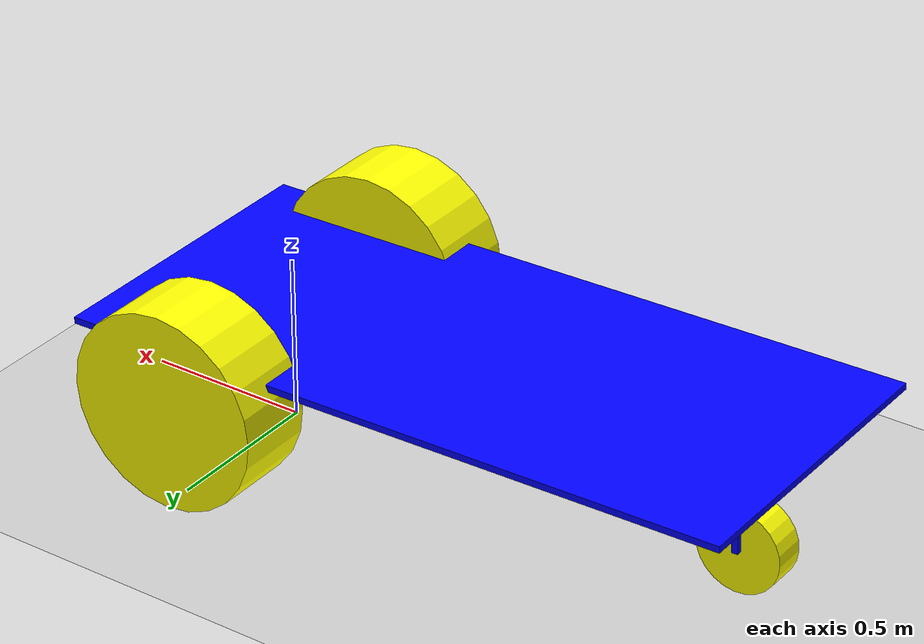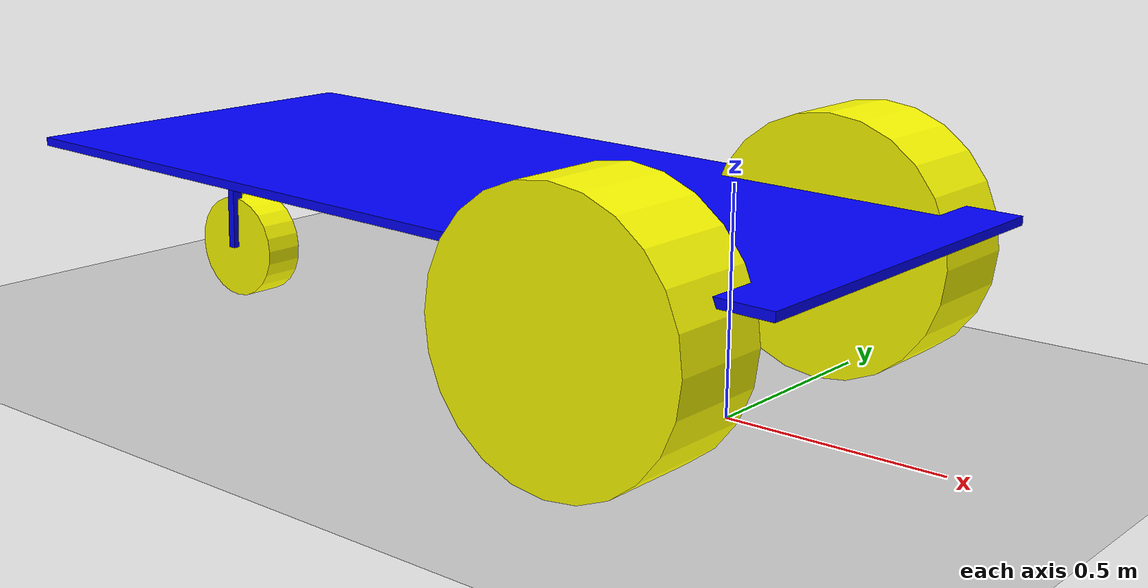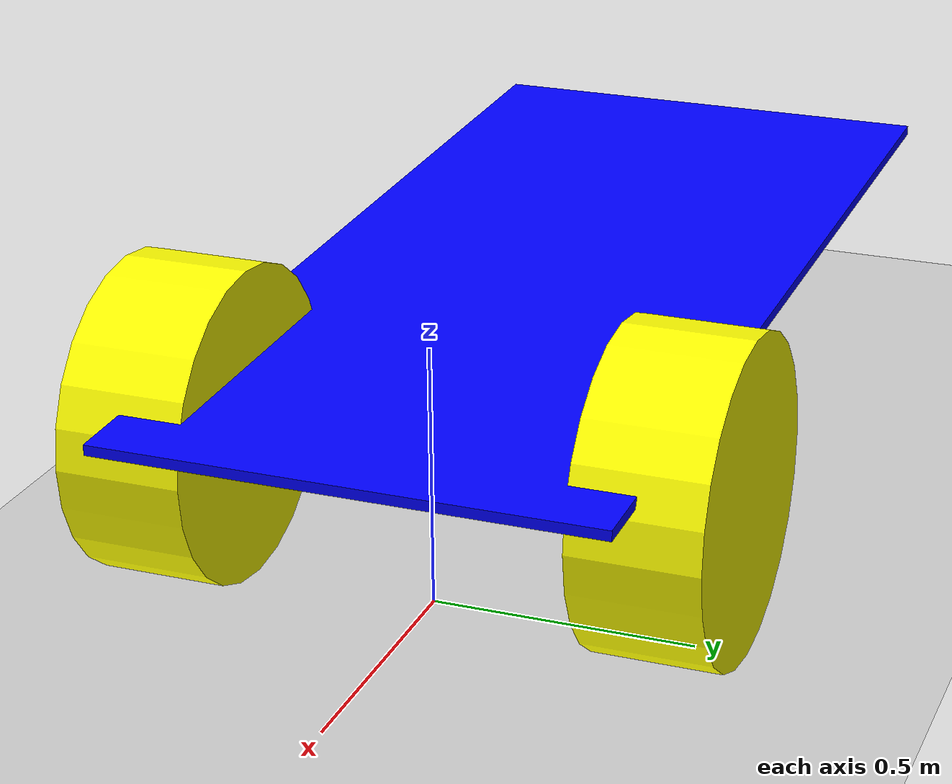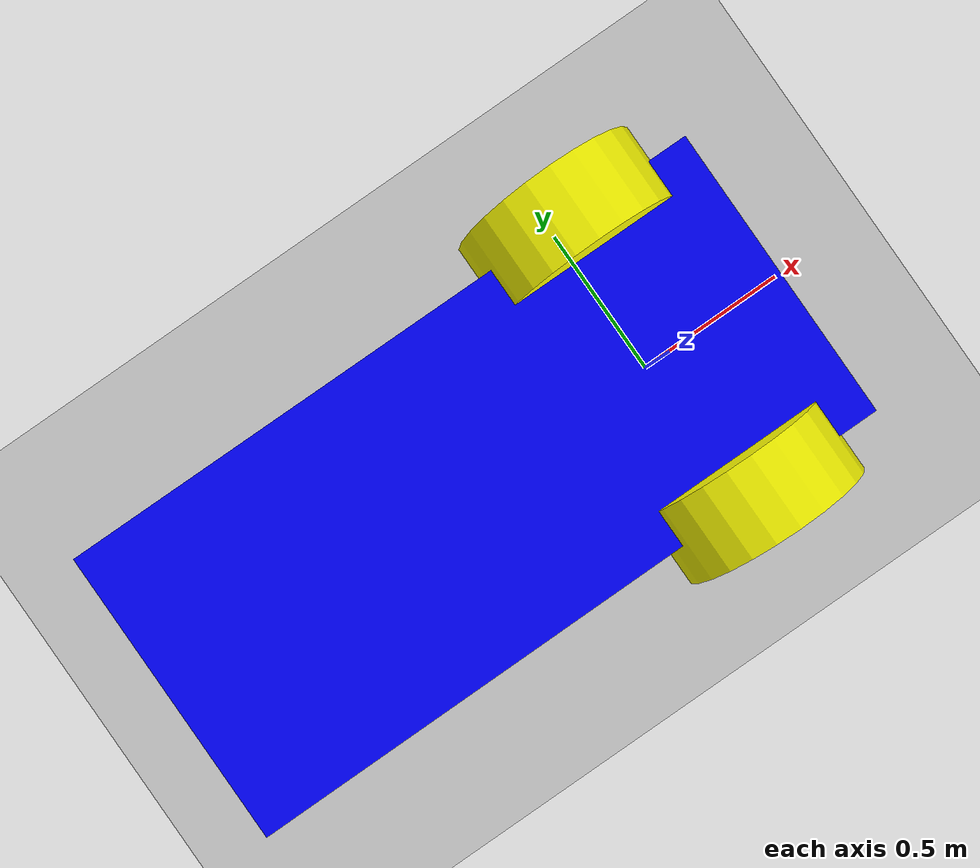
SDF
<sdf version='1.10'>
  <world name='empty'>
    <physics name='1ms' type='ignored'>
      <max_step_size>0.001</max_step_size>
      <real_time_factor>1</real_time_factor>
      <real_time_update_rate>1000</real_time_update_rate>
    </physics>

    <plugin name='gz::sim::systems::Physics' filename='gz-sim-physics-system'/>
    <plugin name='gz::sim::systems::UserCommands' filename='gz-sim-user-commands-system'/>
    <plugin name='gz::sim::systems::SceneBroadcaster' filename='gz-sim-scene-broadcaster-system'/>
    <plugin name='gz::sim::systems::Contact' filename='gz-sim-contact-system'/>

    <gravity>0 0 -9.8000000000000007</gravity>
    <magnetic_field>5.5644999999999998e-06 2.2875799999999999e-05 -4.2388400000000002e-05</magnetic_field>
    <atmosphere type='adiabatic'/>
    <scene>
      <ambient>0.400000006 0.400000006 0.400000006 1</ambient>
      <background>0.699999988 0.699999988 0.699999988 1</background>
      <shadows>true</shadows>
    </scene>

    <model name='ground_plane'>
      <static>true</static>
      <link name='link'>
        <collision name='collision'>
          <geometry>
            <plane>
              <normal>0 0 1</normal>
              <size>100 100</size>
            </plane>
          </geometry>
          <surface>
            <friction>
              <ode/>
            </friction>
            <bounce/>
            <contact/>
          </surface>
        </collision>
        <visual name='visual'>
          <geometry>
            <plane>
              <normal>0 0 1</normal>
              <size>100 100</size>
            </plane>
          </geometry>
          <material>
            <ambient>0.800000012 0.800000012 0.800000012 1</ambient>
            <diffuse>0.800000012 0.800000012 0.800000012 1</diffuse>
            <specular>0.800000012 0.800000012 0.800000012 1</specular>
          </material>
        </visual>
        <pose>0 0 0 0 0 0</pose>
        <inertial>
          <pose>0 0 0 0 0 0</pose>
          <mass>1</mass>
          <inertia>
            <ixx>1</ixx>
            <ixy>0</ixy>
            <ixz>0</ixz>
            <iyy>1</iyy>
            <iyz>0</iyz>
            <izz>1</izz>
          </inertia>
        </inertial>
        <enable_wind>false</enable_wind>
      </link>
      <pose>0 0 0 0 0 0</pose>
      <self_collide>false</self_collide>
    </model>

    <model name='batmobil'>
      <link name='base_link'>
        <inertial>
          <pose>-0.66666666666666663 0 -0.0041666666666666657 0 0 0</pose>
          <mass>12</mass>
          <inertia>
            <ixx>1.075791666666666</ixx>
            <ixy>0</ixy>
            <ixz>-0.12666666666666659</ixz>
            <iyy>2.214958333333334</iyy>
            <iyz>0</iyz>
            <izz>2.1941666666666668</izz>
          </inertia>
        </inertial>
        <collision name='base_link_fixed_joint_lump__wheel_arm_left_collision'>
          <pose>-1.5 -0.050000000000000003 -0.14999999999999999 0 0 0</pose>
          <geometry>
            <box>
              <size>0.02 0.029999999999999999 0.29999999999999999</size>
            </box>
          </geometry>
          <surface>
            <friction>
              <ode/>
            </friction>
            <bounce/>
            <contact/>
          </surface>
        </collision>
        <collision name='base_link_fixed_joint_lump__wheel_arm_right_collision_1'>
          <pose>-1.5 0.050000000000000003 -0.14999999999999999 0 0 0</pose>
          <geometry>
            <box>
              <size>0.02 0.029999999999999999 0.29999999999999999</size>
            </box>
          </geometry>
          <surface>
            <friction>
              <ode/>
            </friction>
            <bounce/>
            <contact/>
          </surface>
        </collision>
        <collision name='base_link_fixed_joint_lump__chassis_collision_2'>
          <pose>-0.65000000000000002 0 0.01 0 0 0</pose>
          <geometry>
            <box>
              <size>2.1000000000000001 0.94999999999999996 0.02</size>
            </box>
          </geometry>
          <surface>
            <friction>
              <ode/>
            </friction>
            <bounce/>
            <contact/>
          </surface>
        </collision>
        <visual name='base_link_fixed_joint_lump__wheel_arm_left_visual'>
          <pose>-1.5 -0.050000000000000003 -0.14999999999999999 0 0 0</pose>
          <geometry>
            <box>
              <size>0.02 0.029999999999999999 0.29999999999999999</size>
            </box>
          </geometry>
          <material>
            <diffuse>0 0 1 1</diffuse>
            <ambient>0 0 1 1</ambient>
          </material>
        </visual>
        <visual name='base_link_fixed_joint_lump__wheel_arm_right_visual_1'>
          <pose>-1.5 0.050000000000000003 -0.14999999999999999 0 0 0</pose>
          <geometry>
            <box>
              <size>0.02 0.029999999999999999 0.29999999999999999</size>
            </box>
          </geometry>
          <material>
            <diffuse>0 0 1 1</diffuse>
            <ambient>0 0 1 1</ambient>
          </material>
        </visual>
        <visual name='base_link_fixed_joint_lump__chassis_visual_2'>
          <pose>-0.65000000000000002 0 0.01 0 0 0</pose>
          <geometry>
            <box>
              <size>2.1000000000000001 0.94999999999999996 0.02</size>
            </box>
          </geometry>
          <material>
            <diffuse>0 0 1 1</diffuse>
            <ambient>0 0 1 1</ambient>
          </material>
        </visual>
        <pose>0 0 0 0 0 0</pose>
        <enable_wind>false</enable_wind>
      </link>
      <joint name='base_to_left_wheel' type='revolute'>
        <pose>0 0 -5.5511199999999995e-17 0 0 0</pose>
        <parent>base_link</parent>
        <child>left_wheel</child>
        <axis>
          <xyz>0 0 1</xyz>
          <limit>
            <lower>-inf</lower>
            <upper>inf</upper>
            <effort>inf</effort>
            <velocity>inf</velocity>
            <stiffness>100000000</stiffness>
            <dissipation>1</dissipation>
          </limit>
          <dynamics>
            <spring_reference>0</spring_reference>
            <spring_stiffness>0</spring_stiffness>
            <damping>0.10000000000000001</damping>
            <friction>0.10000000000000001</friction>
          </dynamics>
        </axis>
      </joint>
      <link name='left_wheel'>
        <pose>8.4292300000000001e-08 0.47499999999999998 -0.099999900000000003 -1.5708 -0.013658500000000004 5.0174599998867791e-08</pose>
        <inertial>
          <pose>0 0 0 0 0 0</pose>
          <mass>1</mass>
          <inertia>
            <ixx>0.02</ixx>
            <ixy>0</ixy>
            <ixz>0</ixz>
            <iyy>0.02</iyy>
            <iyz>0</iyz>
            <izz>0.02</izz>
          </inertia>
        </inertial>
        <collision name='left_wheel_collision'>
          <pose>0 0 0 0 0 0</pose>
          <geometry>
            <cylinder>
              <length>0.23999999999999999</length>
              <radius>0.29999999999999999</radius>
            </cylinder>
          </geometry>
          <surface>
            <friction>
              <ode/>
            </friction>
            <bounce/>
            <contact/>
          </surface>
        </collision>
        <visual name='left_wheel_visual'>
          <pose>0 0 0 0 0 0</pose>
          <geometry>
            <cylinder>
              <length>0.23999999999999999</length>
              <radius>0.29999999999999999</radius>
            </cylinder>
          </geometry>
          <material>
            <diffuse>1 1 0 1</diffuse>
            <ambient>1 1 0 1</ambient>
          </material>
        </visual>
        <enable_wind>false</enable_wind>
      </link>
      <joint name='base_to_right_wheel' type='revolute'>
        <pose>0 0 -5.5511199999999995e-17 0 0 0</pose>
        <parent>base_link</parent>
        <child>right_wheel</child>
        <axis>
          <xyz>0 0 -1</xyz>
          <limit>
            <lower>-inf</lower>
            <upper>inf</upper>
            <effort>inf</effort>
            <velocity>inf</velocity>
            <stiffness>100000000</stiffness>
            <dissipation>1</dissipation>
          </limit>
          <dynamics>
            <spring_reference>0</spring_reference>
            <spring_stiffness>0</spring_stiffness>
            <damping>0.10000000000000001</damping>
            <friction>0.10000000000000001</friction>
          </dynamics>
        </axis>
      </joint>
      <link name='right_wheel'>
        <pose>8.4292499999999999e-08 -0.47499999999999998 -0.099999900000000003 1.5708 -0.013658500000000006 -5.017449999921172e-08</pose>
        <inertial>
          <pose>0 0 0 0 0 0</pose>
          <mass>1</mass>
          <inertia>
            <ixx>0.02</ixx>
            <ixy>0</ixy>
            <ixz>0</ixz>
            <iyy>0.02</iyy>
            <iyz>0</iyz>
            <izz>0.02</izz>
          </inertia>
        </inertial>
        <collision name='right_wheel_collision'>
          <pose>0 0 0 0 0 0</pose>
          <geometry>
            <cylinder>
              <length>0.23999999999999999</length>
              <radius>0.29999999999999999</radius>
            </cylinder>
          </geometry>
          <surface>
            <friction>
              <ode/>
            </friction>
            <bounce/>
            <contact/>
          </surface>
        </collision>
        <visual name='right_wheel_visual'>
          <pose>0 0 0 0 0 0</pose>
          <geometry>
            <cylinder>
              <length>0.23999999999999999</length>
              <radius>0.29999999999999999</radius>
            </cylinder>
          </geometry>
          <material>
            <diffuse>1 1 0 1</diffuse>
            <ambient>1 1 0 1</ambient>
          </material>
        </visual>
        <enable_wind>false</enable_wind>
      </link>
      <joint name='arm_to_front_wheel' type='revolute'>
        <pose>0 0 2.7755599999999997e-17 0 0 0</pose>
        <parent>base_link</parent>
        <child>front_wheel</child>
        <axis>
          <xyz>0 0 1</xyz>
          <limit>
            <lower>-inf</lower>
            <upper>inf</upper>
            <effort>inf</effort>
            <velocity>inf</velocity>
            <stiffness>100000000</stiffness>
            <dissipation>1</dissipation>
          </limit>
          <dynamics>
            <spring_reference>0</spring_reference>
            <spring_stiffness>0</spring_stiffness>
            <damping>0.10000000000000001</damping>
            <friction>0.10000000000000001</friction>
          </dynamics>
        </axis>
      </joint>
      <link name='front_wheel'>
        <pose>-1.5 -6.5197999999999997e-12 -0.29999799999999999 -1.5708 -0.05405370000000001 1.987469999927868e-07</pose>
        <inertial>
          <pose>0 0 0 0 0 0</pose>
          <mass>0.80000000000000004</mass>
          <inertia>
            <ixx>0.02</ixx>
            <ixy>0</ixy>
            <ixz>0</ixz>
            <iyy>0.02</iyy>
            <iyz>0</iyz>
            <izz>0.02</izz>
          </inertia>
        </inertial>
        <collision name='front_wheel_collision'>
          <pose>0 0 0 0 0 0</pose>
          <geometry>
            <cylinder>
              <length>0.10000000000000001</length>
              <radius>0.13</radius>
            </cylinder>
          </geometry>
          <surface>
            <friction>
              <ode/>
            </friction>
            <bounce/>
            <contact/>
          </surface>
        </collision>
        <visual name='front_wheel_visual'>
          <pose>0 0 0 0 0 0</pose>
          <geometry>
            <cylinder>
              <length>0.10000000000000001</length>
              <radius>0.13</radius>
            </cylinder>
          </geometry>
          <material>
            <diffuse>1 1 0 1</diffuse>
            <ambient>1 1 0 1</ambient>
          </material>
        </visual>
        <enable_wind>false</enable_wind>
      </link>
      <frame name='base_to_wheel_arm_left' attached_to='base_link'>
        <pose>-1.5 -0.050000000000000003 -0.14999999999999999 0 0 0</pose>
      </frame>
      <frame name='wheel_arm_left' attached_to='base_to_wheel_arm_left'>
        <pose>0 0 0 0 0 0</pose>
      </frame>
      <frame name='base_to_wheel_arm_right' attached_to='base_link'>
        <pose>-1.5 0.050000000000000003 -0.14999999999999999 0 0 0</pose>
      </frame>
      <frame name='wheel_arm_right' attached_to='base_to_wheel_arm_right'>
        <pose>0 0 0 0 0 0</pose>
      </frame>
      <frame name='chassis_joint' attached_to='base_link'>
        <pose>-1 0 0 0 0 0</pose>
      </frame>
      <frame name='chassis' attached_to='chassis_joint'>
        <pose>0 0 0 0 0 0</pose>
      </frame>
    <!-- Add DiffDrive plugin here -->
      <plugin
        filename='gz-sim-diff-drive-system'
        name='gz::sim::systems::DiffDrive'>
        <left_joint>base_to_left_wheel</left_joint>
        <right_joint>base_to_right_wheel</right_joint>
        <wheel_separation>0.95</wheel_separation>
        <wheel_radius>0.3</wheel_radius>
        <odom_publish_frequency>1</odom_publish_frequency>
        <topic>cmd_vel</topic>
      </plugin>
    <!-- Moving Backward-->
      <plugin filename="gz-sim-triggered-publisher-system"
              name="gz::sim::systems::TriggeredPublisher">
          <input type="gz.msgs.Int32" topic="/keyboard/keypress">
              <match field="data">16777237</match>
          </input>
          <output type="gz.msgs.Twist" topic="/cmd_vel">
              linear: {x: 0.5}, angular: {z: 0.0}
          </output>
      </plugin>
      <!-- Moving Forwart-->
      <plugin filename="gz-sim-triggered-publisher-system"
              name="gz::sim::systems::TriggeredPublisher">
          <input type="gz.msgs.Int32" topic="/keyboard/keypress">
              <match field="data">16777235</match>
          </input>
          <output type="gz.msgs.Twist" topic="/cmd_vel">
              linear: {x: -0.5}, angular: {z: 0.0}
          </output>
      </plugin>
    <!-- Moving Left-->
      <plugin filename="gz-sim-triggered-publisher-system"
              name="gz::sim::systems::TriggeredPublisher">
          <input type="gz.msgs.Int32" topic="/keyboard/keypress">
              <match field="data">16777234</match>
          </input>
          <output type="gz.msgs.Twist" topic="/cmd_vel">
              linear: {x: -0.1}, angular: {z: 0.9}
          </output>
      </plugin>
      <!-- Moving Right-->
      <plugin filename="gz-sim-triggered-publisher-system"
              name="gz::sim::systems::TriggeredPublisher">
          <input type="gz.msgs.Int32" topic="/keyboard/keypress">
              <match field="data">16777236</match>
          </input>
          <output type="gz.msgs.Twist" topic="/cmd_vel">
              linear: {x: 0.1}, angular: {z: -0.9}
          </output>
      </plugin>
      <pose>0.0012692599999999999 -1.10652e-07 0.39998 1.5631099999999998e-09 0.019972699999999993 -7.2983900000000048e-08</pose>
      <static>false</static>
      <self_collide>false</self_collide>
    </model>
    <light name='sun' type='directional'>
      <pose>0 0 10 0 0 0</pose>
      <cast_shadows>true</cast_shadows>
      <intensity>1</intensity>
      <direction>-0.5 0.10000000000000001 -0.90000000000000002</direction>
      <diffuse>0.800000012 0.800000012 0.800000012 1</diffuse>
      <specular>0.200000003 0.200000003 0.200000003 1</specular>
      <attenuation>
        <range>1000</range>
        <linear>0.0099999997764825821</linear>
        <constant>0.89999997615814209</constant>
        <quadratic>0.0010000000474974513</quadratic>
      </attenuation>
      <spot>
        <inner_angle>0</inner_angle>
        <outer_angle>0</outer_angle>
        <falloff>0</falloff>
      </spot>
    </light>
  </world>
</sdf>
